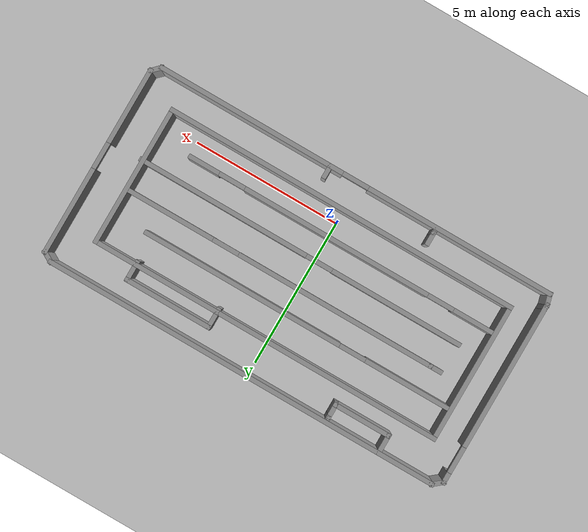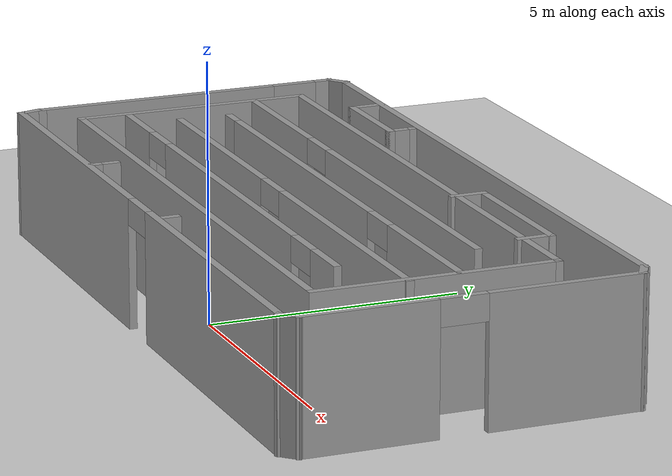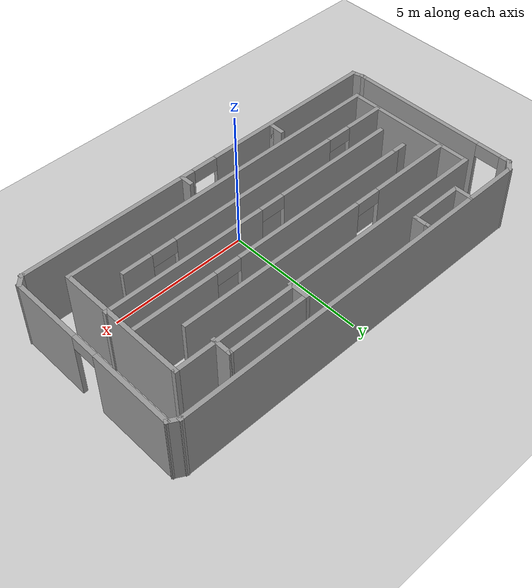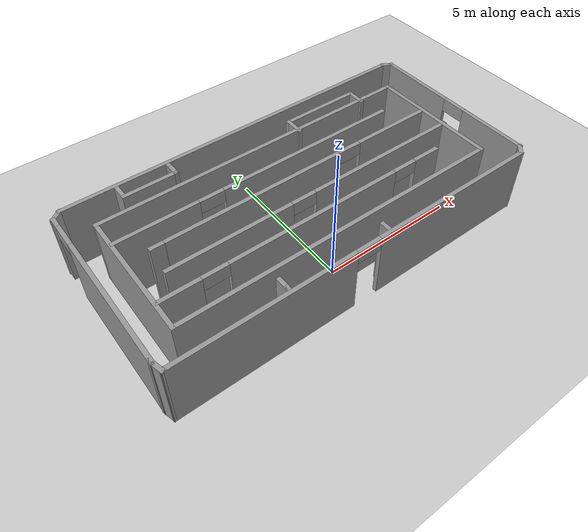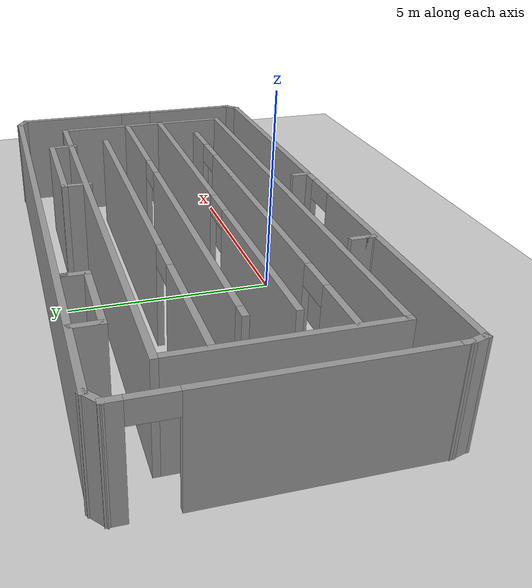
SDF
<?xml version="1.0" ?>
<sdf version="1.4">
  <world name="default">
    <!-- A global light source -->
    <include>
      <uri>model://sun</uri>
    </include>
    <!-- A ground plane -->
    <include>
      <uri>model://ground_plane</uri>
    </include>

    <include>
      <uri>model://MazeSmall</uri>
    </include>

    <!-- Own physics settings to speed up simulation -->
    <physics type='ode'>
      <max_step_size>0.01</max_step_size>
      <real_time_factor>1</real_time_factor>
      <real_time_update_rate>100</real_time_update_rate>
      <gravity>0 0 -9.8</gravity>
    </physics>
  </world>
</sdf>

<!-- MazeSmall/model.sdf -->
<sdf version='1.6'>
  <model name='MazeSmall'>
    <pose frame=''>0.221874 2.01437 0 0 -0 0</pose>
    <link name='Wall_0'>
      <collision name='Wall_0_Collision'>
        <geometry>
          <box>
            <size>12 0.15 2.5</size>
          </box>
        </geometry>
        <pose frame=''>0 0 1.25 0 -0 0</pose>
      </collision>
      <visual name='Wall_0_Visual'>
        <pose frame=''>0 0 1.25 0 -0 0</pose>
        <geometry>
          <box>
            <size>12 0.15 2.5</size>
          </box>
        </geometry>
        <material>
          <script>
            <uri>file://media/materials/scripts/gazebo.material</uri>
            <name>Gazebo/Grey</name>
          </script>
          <ambient>1 1 1 1</ambient>
        </material>
      </visual>
      <pose frame=''>-0.125849 -2.43822 0 0 -0 0</pose>
    </link>
    <link name='Wall_1'>
      <collision name='Wall_1_Collision'>
        <geometry>
          <box>
            <size>4.75 0.15 2.5</size>
          </box>
        </geometry>
        <pose frame=''>0 0 1.25 0 -0 0</pose>
      </collision>
      <visual name='Wall_1_Visual'>
        <pose frame=''>0 0 1.25 0 -0 0</pose>
        <geometry>
          <box>
            <size>4.75 0.15 2.5</size>
          </box>
        </geometry>
        <material>
          <script>
            <uri>file://media/materials/scripts/gazebo.material</uri>
            <name>Gazebo/Grey</name>
          </script>
          <ambient>1 1 1 1</ambient>
        </material>
      </visual>
      <pose frame=''>5.79915 -0.138216 0 0 -0 1.5708</pose>
    </link>
    <link name='Wall_10'>
      <collision name='Wall_10_Collision'>
        <geometry>
          <box>
            <size>0.5 0.15 2.5</size>
          </box>
        </geometry>
        <pose frame=''>0 0 1.25 0 -0 0</pose>
      </collision>
      <visual name='Wall_10_Visual'>
        <pose frame=''>0 0 1.25 0 -0 0</pose>
        <geometry>
          <box>
            <size>0.5 0.15 2.5</size>
          </box>
        </geometry>
        <material>
          <script>
            <uri>file://media/materials/scripts/gazebo.material</uri>
            <name>Gazebo/Grey</name>
          </script>
          <ambient>1 1 1 1</ambient>
        </material>
      </visual>
      <pose frame=''>-5.0182 0.323737 0 0 -0 3.14159</pose>
    </link>
    <link name='Wall_14'>
      <pose frame=''>0.294248 -0.673197 0 0 -0 3.14159</pose>
      <visual name='Wall_14_Visual_0'>
        <pose frame=''>-2.70261 0 1.25 0 -0 0</pose>
        <geometry>
          <box>
            <size>5.84478 0.15 2.5</size>
          </box>
        </geometry>
        <material>
          <script>
            <uri>file://media/materials/scripts/gazebo.material</uri>
            <name>Gazebo/Grey</name>
          </script>
          <ambient>1 1 1 1</ambient>
        </material>
      </visual>
      <collision name='Wall_14_Collision_0'>
        <geometry>
          <box>
            <size>5.84478 0.15 2.5</size>
          </box>
        </geometry>
        <pose frame=''>-2.70261 0 1.25 0 -0 0</pose>
      </collision>
      <visual name='Wall_14_Visual_1'>
        <pose frame=''>3.37239 0 1.25 0 -0 0</pose>
        <geometry>
          <box>
            <size>4.50522 0.15 2.5</size>
          </box>
        </geometry>
        <material>
          <script>
            <uri>file://media/materials/scripts/gazebo.material</uri>
            <name>Gazebo/Grey</name>
          </script>
          <ambient>1 1 1 1</ambient>
        </material>
      </visual>
      <collision name='Wall_14_Collision_1'>
        <geometry>
          <box>
            <size>4.50522 0.15 2.5</size>
          </box>
        </geometry>
        <pose frame=''>3.37239 0 1.25 0 -0 0</pose>
      </collision>
      <visual name='Wall_14_Visual_2'>
        <pose frame=''>0.669781 0 2.25 0 -0 0</pose>
        <geometry>
          <box>
            <size>0.9 0.15 0.5</size>
          </box>
        </geometry>
        <material>
          <script>
            <uri>file://media/materials/scripts/gazebo.material</uri>
            <name>Gazebo/Grey</name>
          </script>
          <ambient>1 1 1 1</ambient>
        </material>
      </visual>
      <collision name='Wall_14_Collision_2'>
        <geometry>
          <box>
            <size>0.9 0.15 0.5</size>
          </box>
        </geometry>
        <pose frame=''>0.669781 0 2.25 0 -0 0</pose>
      </collision>
    </link>
    <link name='Wall_16'>
      <pose frame=''>-6.96929 0.10208 0 0 0 -1.5708</pose>
      <visual name='Wall_16_Visual_0'>
        <pose frame=''>-2.92576 0 1.25 0 -0 0</pose>
        <geometry>
          <box>
            <size>0.398473 0.15 2.5</size>
          </box>
        </geometry>
        <material>
          <script>
            <uri>file://media/materials/scripts/gazebo.material</uri>
            <name>Gazebo/Grey</name>
          </script>
          <ambient>1 1 1 1</ambient>
        </material>
      </visual>
      <collision name='Wall_16_Collision_0'>
        <geometry>
          <box>
            <size>0.398473 0.15 2.5</size>
          </box>
        </geometry>
        <pose frame=''>-2.92576 0 1.25 0 -0 0</pose>
      </collision>
      <visual name='Wall_16_Visual_1'>
        <pose frame=''>0.649236 0 1.25 0 -0 0</pose>
        <geometry>
          <box>
            <size>4.95153 0.15 2.5</size>
          </box>
        </geometry>
        <material>
          <script>
            <uri>file://media/materials/scripts/gazebo.material</uri>
            <name>Gazebo/Grey</name>
          </script>
          <ambient>1 1 1 1</ambient>
        </material>
      </visual>
      <collision name='Wall_16_Collision_1'>
        <geometry>
          <box>
            <size>4.95153 0.15 2.5</size>
          </box>
        </geometry>
        <pose frame=''>0.649236 0 1.25 0 -0 0</pose>
      </collision>
      <visual name='Wall_16_Visual_2'>
        <pose frame=''>-2.27653 0 2.25 0 -0 0</pose>
        <geometry>
          <box>
            <size>0.9 0.15 0.5</size>
          </box>
        </geometry>
        <material>
          <script>
            <uri>file://media/materials/scripts/gazebo.material</uri>
            <name>Gazebo/Grey</name>
          </script>
          <ambient>1 1 1 1</ambient>
        </material>
      </visual>
      <collision name='Wall_16_Collision_2'>
        <geometry>
          <box>
            <size>0.9 0.15 0.5</size>
          </box>
        </geometry>
        <pose frame=''>-2.27653 0 2.25 0 -0 0</pose>
      </collision>
    </link>
    <link name='Wall_17'>
      <collision name='Wall_17_Collision'>
        <geometry>
          <box>
            <size>0.25 0.15 2.5</size>
          </box>
        </geometry>
        <pose frame=''>0 0 1.25 0 -0 0</pose>
      </collision>
      <visual name='Wall_17_Visual'>
        <pose frame=''>0 0 1.25 0 -0 0</pose>
        <geometry>
          <box>
            <size>0.25 0.15 2.5</size>
          </box>
        </geometry>
        <material>
          <script>
            <uri>file://media/materials/scripts/gazebo.material</uri>
            <name>Gazebo/Grey</name>
          </script>
          <ambient>1 1 1 1</ambient>
        </material>
      </visual>
      <pose frame=''>-6.96929 -2.99792 0 0 0 -1.5708</pose>
    </link>
    <link name='Wall_18'>
      <collision name='Wall_18_Collision'>
        <geometry>
          <box>
            <size>0.5 0.15 2.5</size>
          </box>
        </geometry>
        <pose frame=''>0 0 1.25 0 -0 0</pose>
      </collision>
      <visual name='Wall_18_Visual'>
        <pose frame=''>0 0 1.25 0 -0 0</pose>
        <geometry>
          <box>
            <size>0.5 0.15 2.5</size>
          </box>
        </geometry>
        <material>
          <script>
            <uri>file://media/materials/scripts/gazebo.material</uri>
            <name>Gazebo/Grey</name>
          </script>
          <ambient>1 1 1 1</ambient>
        </material>
      </visual>
      <pose frame=''>-6.92399 -3.21696 0 0 0 -1.309</pose>
    </link>
    <link name='Wall_2'>
      <collision name='Wall_2_Collision'>
        <geometry>
          <box>
            <size>12 0.15 2.5</size>
          </box>
        </geometry>
        <pose frame=''>0 0 1.25 0 -0 0</pose>
      </collision>
      <visual name='Wall_2_Visual'>
        <pose frame=''>0 0 1.25 0 -0 0</pose>
        <geometry>
          <box>
            <size>12 0.15 2.5</size>
          </box>
        </geometry>
        <material>
          <script>
            <uri>file://media/materials/scripts/gazebo.material</uri>
            <name>Gazebo/Grey</name>
          </script>
          <ambient>1 1 1 1</ambient>
        </material>
      </visual>
      <pose frame=''>-0.125849 2.16178 0 0 -0 3.14159</pose>
    </link>
    <link name='Wall_20'>
      <pose frame=''>-0.0787 -3.38599 0 0 -0 0</pose>
      <visual name='Wall_20_Visual_0'>
        <pose frame=''>-3.66043 0 1.25 0 -0 0</pose>
        <geometry>
          <box>
            <size>6.42915 0.15 2.5</size>
          </box>
        </geometry>
        <material>
          <script>
            <uri>file://media/materials/scripts/gazebo.material</uri>
            <name>Gazebo/Grey</name>
          </script>
          <ambient>1 1 1 1</ambient>
        </material>
      </visual>
      <collision name='Wall_20_Collision_0'>
        <geometry>
          <box>
            <size>6.42915 0.15 2.5</size>
          </box>
        </geometry>
        <pose frame=''>-3.66043 0 1.25 0 -0 0</pose>
      </collision>
      <visual name='Wall_20_Visual_1'>
        <pose frame=''>3.66458 0 1.25 0 -0 0</pose>
        <geometry>
          <box>
            <size>6.42085 0.15 2.5</size>
          </box>
        </geometry>
        <material>
          <script>
            <uri>file://media/materials/scripts/gazebo.material</uri>
            <name>Gazebo/Grey</name>
          </script>
          <ambient>1 1 1 1</ambient>
        </material>
      </visual>
      <collision name='Wall_20_Collision_1'>
        <geometry>
          <box>
            <size>6.42085 0.15 2.5</size>
          </box>
        </geometry>
        <pose frame=''>3.66458 0 1.25 0 -0 0</pose>
      </collision>
      <visual name='Wall_20_Visual_2'>
        <pose frame=''>0.004151 0 2.25 0 -0 0</pose>
        <geometry>
          <box>
            <size>0.9 0.15 0.5</size>
          </box>
        </geometry>
        <material>
          <script>
            <uri>file://media/materials/scripts/gazebo.material</uri>
            <name>Gazebo/Grey</name>
          </script>
          <ambient>1 1 1 1</ambient>
        </material>
      </visual>
      <collision name='Wall_20_Collision_2'>
        <geometry>
          <box>
            <size>0.9 0.15 0.5</size>
          </box>
        </geometry>
        <pose frame=''>0.004151 0 2.25 0 -0 0</pose>
      </collision>
    </link>
    <link name='Wall_21'>
      <collision name='Wall_21_Collision'>
        <geometry>
          <box>
            <size>0.5 0.15 2.5</size>
          </box>
        </geometry>
        <pose frame=''>0 0 1.25 0 -0 0</pose>
      </collision>
      <visual name='Wall_21_Visual'>
        <pose frame=''>0 0 1.25 0 -0 0</pose>
        <geometry>
          <box>
            <size>0.5 0.15 2.5</size>
          </box>
        </geometry>
        <material>
          <script>
            <uri>file://media/materials/scripts/gazebo.material</uri>
            <name>Gazebo/Grey</name>
          </script>
          <ambient>1 1 1 1</ambient>
        </material>
      </visual>
      <pose frame=''>6.84504 -3.26225 0 0 -0 0.785398</pose>
    </link>
    <link name='Wall_22'>
      <pose frame=''>6.96879 0.036493 0 0 -0 1.5708</pose>
      <visual name='Wall_22_Visual_0'>
        <pose frame=''>-1.94697 0 1.25 0 -0 0</pose>
        <geometry>
          <box>
            <size>2.60606 0.15 2.5</size>
          </box>
        </geometry>
        <material>
          <script>
            <uri>file://media/materials/scripts/gazebo.material</uri>
            <name>Gazebo/Grey</name>
          </script>
          <ambient>1 1 1 1</ambient>
        </material>
      </visual>
      <collision name='Wall_22_Collision_0'>
        <geometry>
          <box>
            <size>2.60606 0.15 2.5</size>
          </box>
        </geometry>
        <pose frame=''>-1.94697 0 1.25 0 -0 0</pose>
      </collision>
      <visual name='Wall_22_Visual_1'>
        <pose frame=''>1.75303 0 1.25 0 -0 0</pose>
        <geometry>
          <box>
            <size>2.99395 0.15 2.5</size>
          </box>
        </geometry>
        <material>
          <script>
            <uri>file://media/materials/scripts/gazebo.material</uri>
            <name>Gazebo/Grey</name>
          </script>
          <ambient>1 1 1 1</ambient>
        </material>
      </visual>
      <collision name='Wall_22_Collision_1'>
        <geometry>
          <box>
            <size>2.99395 0.15 2.5</size>
          </box>
        </geometry>
        <pose frame=''>1.75303 0 1.25 0 -0 0</pose>
      </collision>
      <visual name='Wall_22_Visual_2'>
        <pose frame=''>-0.193945 0 2.25 0 -0 0</pose>
        <geometry>
          <box>
            <size>0.9 0.15 0.5</size>
          </box>
        </geometry>
        <material>
          <script>
            <uri>file://media/materials/scripts/gazebo.material</uri>
            <name>Gazebo/Grey</name>
          </script>
          <ambient>1 1 1 1</ambient>
        </material>
      </visual>
      <collision name='Wall_22_Collision_2'>
        <geometry>
          <box>
            <size>0.9 0.15 0.5</size>
          </box>
        </geometry>
        <pose frame=''>-0.193945 0 2.25 0 -0 0</pose>
      </collision>
    </link>
    <link name='Wall_23'>
      <collision name='Wall_23_Collision'>
        <geometry>
          <box>
            <size>0.5 0.15 2.5</size>
          </box>
        </geometry>
        <pose frame=''>0 0 1.25 0 -0 0</pose>
      </collision>
      <visual name='Wall_23_Visual'>
        <pose frame=''>0 0 1.25 0 -0 0</pose>
        <geometry>
          <box>
            <size>0.5 0.15 2.5</size>
          </box>
        </geometry>
        <material>
          <script>
            <uri>file://media/materials/scripts/gazebo.material</uri>
            <name>Gazebo/Grey</name>
          </script>
          <ambient>1 1 1 1</ambient>
        </material>
      </visual>
      <pose frame=''>6.81723 3.29899 0 0 -0 2.61799</pose>
    </link>
    <link name='Wall_24'>
      <collision name='Wall_24_Collision'>
        <geometry>
          <box>
            <size>13.5 0.15 2.5</size>
          </box>
        </geometry>
        <pose frame=''>0 0 1.25 0 -0 0</pose>
      </collision>
      <visual name='Wall_24_Visual'>
        <pose frame=''>0 0 1.25 0 -0 0</pose>
        <geometry>
          <box>
            <size>13.5 0.15 2.5</size>
          </box>
        </geometry>
        <material>
          <script>
            <uri>file://media/materials/scripts/gazebo.material</uri>
            <name>Gazebo/Grey</name>
          </script>
          <ambient>1 1 1 1</ambient>
        </material>
      </visual>
      <pose frame=''>-0.009322 3.38649 0 0 -0 3.14159</pose>
    </link>
    <link name='Wall_25'>
      <collision name='Wall_25_Collision'>
        <geometry>
          <box>
            <size>0.518992 0.15 2.5</size>
          </box>
        </geometry>
        <pose frame=''>0 0 1.25 0 -0 0</pose>
      </collision>
      <visual name='Wall_25_Visual'>
        <pose frame=''>0 0 1.25 0 -0 0</pose>
        <geometry>
          <box>
            <size>0.518992 0.15 2.5</size>
          </box>
        </geometry>
        <material>
          <script>
            <uri>file://media/materials/scripts/gazebo.material</uri>
            <name>Gazebo/Grey</name>
          </script>
          <ambient>1 1 1 1</ambient>
        </material>
      </visual>
      <pose frame=''>-6.8268 3.26929 0 0 0 -2.45322</pose>
    </link>
    <link name='Wall_27'>
      <collision name='Wall_27_Collision'>
        <geometry>
          <box>
            <size>0.75 0.15 2.5</size>
          </box>
        </geometry>
        <pose frame=''>0 0 1.25 0 -0 0</pose>
      </collision>
      <visual name='Wall_27_Visual'>
        <pose frame=''>0 0 1.25 0 -0 0</pose>
        <geometry>
          <box>
            <size>0.75 0.15 2.5</size>
          </box>
        </geometry>
        <material>
          <script>
            <uri>file://media/materials/scripts/gazebo.material</uri>
            <name>Gazebo/Grey</name>
          </script>
          <ambient>1 1 1 1</ambient>
        </material>
      </visual>
      <pose frame=''>-4.81801 3.07945 0 0 0 -1.5708</pose>
    </link>
    <link name='Wall_28'>
      <collision name='Wall_28_Collision'>
        <geometry>
          <box>
            <size>2 0.15 2.5</size>
          </box>
        </geometry>
        <pose frame=''>0 0 1.25 0 -0 0</pose>
      </collision>
      <visual name='Wall_28_Visual'>
        <pose frame=''>0 0 1.25 0 -0 0</pose>
        <geometry>
          <box>
            <size>2 0.15 2.5</size>
          </box>
        </geometry>
        <material>
          <script>
            <uri>file://media/materials/scripts/gazebo.material</uri>
            <name>Gazebo/Grey</name>
          </script>
          <ambient>1 1 1 1</ambient>
        </material>
      </visual>
      <pose frame=''>-3.89301 2.77945 0 0 -0 0</pose>
    </link>
    <link name='Wall_3'>
      <collision name='Wall_3_Collision'>
        <geometry>
          <box>
            <size>4.75 0.15 2.5</size>
          </box>
        </geometry>
        <pose frame=''>0 0 1.25 0 -0 0</pose>
      </collision>
      <visual name='Wall_3_Visual'>
        <pose frame=''>0 0 1.25 0 -0 0</pose>
        <geometry>
          <box>
            <size>4.75 0.15 2.5</size>
          </box>
        </geometry>
        <material>
          <script>
            <uri>file://media/materials/scripts/gazebo.material</uri>
            <name>Gazebo/Grey</name>
          </script>
          <ambient>1 1 1 1</ambient>
        </material>
      </visual>
      <pose frame=''>-6.05085 -0.138216 0 0 0 -1.5708</pose>
    </link>
    <link name='Wall_31'>
      <collision name='Wall_31_Collision'>
        <geometry>
          <box>
            <size>0.15 0.15 2.5</size>
          </box>
        </geometry>
        <pose frame=''>0 0 1.25 0 -0 0</pose>
      </collision>
      <visual name='Wall_31_Visual'>
        <pose frame=''>0 0 1.25 0 -0 0</pose>
        <geometry>
          <box>
            <size>0.15 0.15 2.5</size>
          </box>
        </geometry>
        <material>
          <script>
            <uri>file://media/materials/scripts/gazebo.material</uri>
            <name>Gazebo/Grey</name>
          </script>
          <ambient>1 1 1 1</ambient>
        </material>
      </visual>
      <pose frame=''>-2.96801 3.22945 0 0 -0 0</pose>
    </link>
    <link name='Wall_40'>
      <collision name='Wall_40_Collision'>
        <geometry>
          <box>
            <size>0.6 0.15 2.5</size>
          </box>
        </geometry>
        <pose frame=''>0 0 1.25 0 -0 0</pose>
      </collision>
      <visual name='Wall_40_Visual'>
        <pose frame=''>0 0 1.25 0 -0 0</pose>
        <geometry>
          <box>
            <size>0.6 0.15 2.5</size>
          </box>
        </geometry>
        <material>
          <script>
            <uri>file://media/materials/scripts/gazebo.material</uri>
            <name>Gazebo/Grey</name>
          </script>
          <ambient>1 1 1 1</ambient>
        </material>
      </visual>
      <pose frame=''>-2.96801 3.00445 0 0 -0 1.5708</pose>
    </link>
    <link name='Wall_42'>
      <collision name='Wall_42_Collision'>
        <geometry>
          <box>
            <size>0.75 0.15 2.5</size>
          </box>
        </geometry>
        <pose frame=''>0 0 1.25 0 -0 0</pose>
      </collision>
      <visual name='Wall_42_Visual'>
        <pose frame=''>0 0 1.25 0 -0 0</pose>
        <geometry>
          <box>
            <size>0.75 0.15 2.5</size>
          </box>
        </geometry>
        <material>
          <script>
            <uri>file://media/materials/scripts/gazebo.material</uri>
            <name>Gazebo/Grey</name>
          </script>
          <ambient>1 1 1 1</ambient>
        </material>
      </visual>
      <pose frame=''>1.54664 2.38838 0 0 0 -1.5708</pose>
    </link>
    <link name='Wall_44'>
      <collision name='Wall_44_Collision'>
        <geometry>
          <box>
            <size>3 0.15 2.5</size>
          </box>
        </geometry>
        <pose frame=''>0 0 1.25 0 -0 0</pose>
      </collision>
      <visual name='Wall_44_Visual'>
        <pose frame=''>0 0 1.25 0 -0 0</pose>
        <geometry>
          <box>
            <size>3 0.15 2.5</size>
          </box>
        </geometry>
        <material>
          <script>
            <uri>file://media/materials/scripts/gazebo.material</uri>
            <name>Gazebo/Grey</name>
          </script>
          <ambient>1 1 1 1</ambient>
        </material>
      </visual>
      <pose frame=''>2.97164 2.68838 0 0 -0 0</pose>
    </link>
    <link name='Wall_45'>
      <collision name='Wall_45_Collision'>
        <geometry>
          <box>
            <size>0.75 0.15 2.5</size>
          </box>
        </geometry>
        <pose frame=''>0 0 1.25 0 -0 0</pose>
      </collision>
      <visual name='Wall_45_Visual'>
        <pose frame=''>0 0 1.25 0 -0 0</pose>
        <geometry>
          <box>
            <size>0.75 0.15 2.5</size>
          </box>
        </geometry>
        <material>
          <script>
            <uri>file://media/materials/scripts/gazebo.material</uri>
            <name>Gazebo/Grey</name>
          </script>
          <ambient>1 1 1 1</ambient>
        </material>
      </visual>
      <pose frame=''>4.39664 2.38838 0 0 0 -1.5708</pose>
    </link>
    <link name='Wall_47'>
      <collision name='Wall_47_Collision'>
        <geometry>
          <box>
            <size>0.5 0.15 2.5</size>
          </box>
        </geometry>
        <pose frame=''>0 0 1.25 0 -0 0</pose>
      </collision>
      <visual name='Wall_47_Visual'>
        <pose frame=''>0 0 1.25 0 -0 0</pose>
        <geometry>
          <box>
            <size>0.5 0.15 2.5</size>
          </box>
        </geometry>
        <material>
          <script>
            <uri>file://media/materials/scripts/gazebo.material</uri>
            <name>Gazebo/Grey</name>
          </script>
          <ambient>1 1 1 1</ambient>
        </material>
      </visual>
      <pose frame=''>-2.90794 -3.02592 0 0 0 -1.5708</pose>
    </link>
    <link name='Wall_48'>
      <collision name='Wall_48_Collision'>
        <geometry>
          <box>
            <size>0.25 0.15 2.5</size>
          </box>
        </geometry>
        <pose frame=''>0 0 1.25 0 -0 0</pose>
      </collision>
      <visual name='Wall_48_Visual'>
        <pose frame=''>0 0 1.25 0 -0 0</pose>
        <geometry>
          <box>
            <size>0.25 0.15 2.5</size>
          </box>
        </geometry>
        <material>
          <script>
            <uri>file://media/materials/scripts/gazebo.material</uri>
            <name>Gazebo/Grey</name>
          </script>
          <ambient>1 1 1 1</ambient>
        </material>
      </visual>
      <pose frame=''>-2.90794 -3.25092 0 0 0 -1.5708</pose>
    </link>
    <link name='Wall_5'>
      <pose frame=''>-0.696525 1.16326 0 0 -0 0</pose>
      <visual name='Wall_5_Visual_0'>
        <pose frame=''>-3.87137 0 1.25 0 -0 0</pose>
        <geometry>
          <box>
            <size>3.00726 0.15 2.5</size>
          </box>
        </geometry>
        <material>
          <script>
            <uri>file://media/materials/scripts/gazebo.material</uri>
            <name>Gazebo/Grey</name>
          </script>
          <ambient>1 1 1 1</ambient>
        </material>
      </visual>
      <collision name='Wall_5_Collision_0'>
        <geometry>
          <box>
            <size>3.00726 0.15 2.5</size>
          </box>
        </geometry>
        <pose frame=''>-3.87137 0 1.25 0 -0 0</pose>
      </collision>
      <visual name='Wall_5_Visual_1'>
        <pose frame=''>1.95363 0 1.25 0 -0 0</pose>
        <geometry>
          <box>
            <size>6.84274 0.15 2.5</size>
          </box>
        </geometry>
        <material>
          <script>
            <uri>file://media/materials/scripts/gazebo.material</uri>
            <name>Gazebo/Grey</name>
          </script>
          <ambient>1 1 1 1</ambient>
        </material>
      </visual>
      <collision name='Wall_5_Collision_1'>
        <geometry>
          <box>
            <size>6.84274 0.15 2.5</size>
          </box>
        </geometry>
        <pose frame=''>1.95363 0 1.25 0 -0 0</pose>
      </collision>
      <visual name='Wall_5_Visual_2'>
        <pose frame=''>-1.91774 0 2.25 0 -0 0</pose>
        <geometry>
          <box>
            <size>0.9 0.15 0.5</size>
          </box>
        </geometry>
        <material>
          <script>
            <uri>file://media/materials/scripts/gazebo.material</uri>
            <name>Gazebo/Grey</name>
          </script>
          <ambient>1 1 1 1</ambient>
        </material>
      </visual>
      <collision name='Wall_5_Collision_2'>
        <geometry>
          <box>
            <size>0.9 0.15 0.5</size>
          </box>
        </geometry>
        <pose frame=''>-1.91774 0 2.25 0 -0 0</pose>
      </collision>
    </link>
    <link name='Wall_50'>
      <collision name='Wall_50_Collision'>
        <geometry>
          <box>
            <size>0.5 0.15 2.5</size>
          </box>
        </geometry>
        <pose frame=''>0 0 1.25 0 -0 0</pose>
      </collision>
      <visual name='Wall_50_Visual'>
        <pose frame=''>0 0 1.25 0 -0 0</pose>
        <geometry>
          <box>
            <size>0.5 0.15 2.5</size>
          </box>
        </geometry>
        <material>
          <script>
            <uri>file://media/materials/scripts/gazebo.material</uri>
            <name>Gazebo/Grey</name>
          </script>
          <ambient>1 1 1 1</ambient>
        </material>
      </visual>
      <pose frame=''>0.811783 -3.1988 0 0 -0 1.5708</pose>
    </link>
    <link name='Wall_7'>
      <pose frame=''>-0.696525 -1.49523 0 0 -0 0</pose>
      <visual name='Wall_7_Visual_0'>
        <pose frame=''>-4.64093 0 1.25 0 -0 0</pose>
        <geometry>
          <box>
            <size>1.46814 0.15 2.5</size>
          </box>
        </geometry>
        <material>
          <script>
            <uri>file://media/materials/scripts/gazebo.material</uri>
            <name>Gazebo/Grey</name>
          </script>
          <ambient>1 1 1 1</ambient>
        </material>
      </visual>
      <collision name='Wall_7_Collision_0'>
        <geometry>
          <box>
            <size>1.46814 0.15 2.5</size>
          </box>
        </geometry>
        <pose frame=''>-4.64093 0 1.25 0 -0 0</pose>
      </collision>
      <visual name='Wall_7_Visual_1'>
        <pose frame=''>0.198561 0 1.25 0 -0 0</pose>
        <geometry>
          <box>
            <size>6.41085 0.15 2.5</size>
          </box>
        </geometry>
        <material>
          <script>
            <uri>file://media/materials/scripts/gazebo.material</uri>
            <name>Gazebo/Grey</name>
          </script>
          <ambient>1 1 1 1</ambient>
        </material>
      </visual>
      <collision name='Wall_7_Collision_1'>
        <geometry>
          <box>
            <size>6.41085 0.15 2.5</size>
          </box>
        </geometry>
        <pose frame=''>0.198561 0 1.25 0 -0 0</pose>
      </collision>
      <visual name='Wall_7_Visual_2'>
        <pose frame=''>4.83949 0 1.25 0 -0 0</pose>
        <geometry>
          <box>
            <size>1.07102 0.15 2.5</size>
          </box>
        </geometry>
        <material>
          <script>
            <uri>file://media/materials/scripts/gazebo.material</uri>
            <name>Gazebo/Grey</name>
          </script>
          <ambient>1 1 1 1</ambient>
        </material>
      </visual>
      <collision name='Wall_7_Collision_2'>
        <geometry>
          <box>
            <size>1.07102 0.15 2.5</size>
          </box>
        </geometry>
        <pose frame=''>4.83949 0 1.25 0 -0 0</pose>
      </collision>
      <visual name='Wall_7_Visual_3'>
        <pose frame=''>-3.45686 0 2.25 0 -0 0</pose>
        <geometry>
          <box>
            <size>0.9 0.15 0.5</size>
          </box>
        </geometry>
        <material>
          <script>
            <uri>file://media/materials/scripts/gazebo.material</uri>
            <name>Gazebo/Grey</name>
          </script>
          <ambient>1 1 1 1</ambient>
        </material>
      </visual>
      <collision name='Wall_7_Collision_3'>
        <geometry>
          <box>
            <size>0.9 0.15 0.5</size>
          </box>
        </geometry>
        <pose frame=''>-3.45686 0 2.25 0 -0 0</pose>
      </collision>
      <visual name='Wall_7_Visual_4'>
        <pose frame=''>3.85398 0 2.25 0 -0 0</pose>
        <geometry>
          <box>
            <size>0.9 0.15 0.5</size>
          </box>
        </geometry>
        <material>
          <script>
            <uri>file://media/materials/scripts/gazebo.material</uri>
            <name>Gazebo/Grey</name>
          </script>
          <ambient>1 1 1 1</ambient>
        </material>
      </visual>
      <collision name='Wall_7_Collision_4'>
        <geometry>
          <box>
            <size>0.9 0.15 0.5</size>
          </box>
        </geometry>
        <pose frame=''>3.85398 0 2.25 0 -0 0</pose>
      </collision>
    </link>
    <link name='Wall_9'>
      <pose frame=''>0.456797 0.323737 0 0 -0 3.14159</pose>
      <visual name='Wall_9_Visual_0'>
        <pose frame=''>-3.84307 0 1.25 0 -0 0</pose>
        <geometry>
          <box>
            <size>3.06386 0.15 2.5</size>
          </box>
        </geometry>
        <material>
          <script>
            <uri>file://media/materials/scripts/gazebo.material</uri>
            <name>Gazebo/Grey</name>
          </script>
          <ambient>1 1 1 1</ambient>
        </material>
      </visual>
      <collision name='Wall_9_Collision_0'>
        <geometry>
          <box>
            <size>3.06386 0.15 2.5</size>
          </box>
        </geometry>
        <pose frame=''>-3.84307 0 1.25 0 -0 0</pose>
      </collision>
      <visual name='Wall_9_Visual_1'>
        <pose frame=''>1.98193 0 1.25 0 -0 0</pose>
        <geometry>
          <box>
            <size>6.78614 0.15 2.5</size>
          </box>
        </geometry>
        <material>
          <script>
            <uri>file://media/materials/scripts/gazebo.material</uri>
            <name>Gazebo/Grey</name>
          </script>
          <ambient>1 1 1 1</ambient>
        </material>
      </visual>
      <collision name='Wall_9_Collision_1'>
        <geometry>
          <box>
            <size>6.78614 0.15 2.5</size>
          </box>
        </geometry>
        <pose frame=''>1.98193 0 1.25 0 -0 0</pose>
      </collision>
      <visual name='Wall_9_Visual_2'>
        <pose frame=''>-1.86114 0 2.25 0 -0 0</pose>
        <geometry>
          <box>
            <size>0.9 0.15 0.5</size>
          </box>
        </geometry>
        <material>
          <script>
            <uri>file://media/materials/scripts/gazebo.material</uri>
            <name>Gazebo/Grey</name>
          </script>
          <ambient>1 1 1 1</ambient>
        </material>
      </visual>
      <collision name='Wall_9_Collision_2'>
        <geometry>
          <box>
            <size>0.9 0.15 0.5</size>
          </box>
        </geometry>
        <pose frame=''>-1.86114 0 2.25 0 -0 0</pose>
      </collision>
    </link>
    <static>1</static>
  </model>
</sdf>
